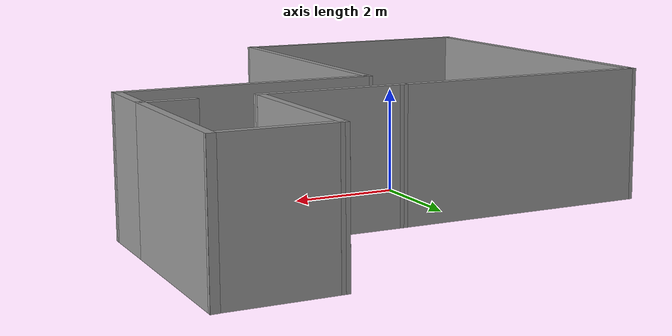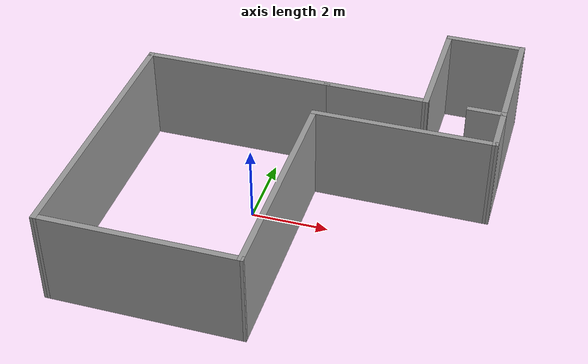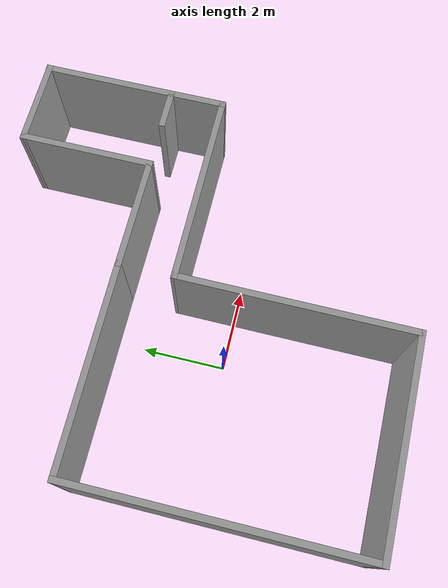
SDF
<?xml version='1.0'?>
<sdf version='1.7'>
  <model name='mapa_home_copa'>
    <pose>1.0426 0.830398 0 0 -0 0</pose>
    <link name='Wall_11'>
      <collision name='Wall_11_Collision'>
        <geometry>
          <box>
            <size>5.01742 0.15 2.5</size>
          </box>
        </geometry>
        <pose>0 0 1.25 0 -0 0</pose>
      </collision>
      <visual name='Wall_11_Visual'>
        <pose>0 0 1.25 0 -0 0</pose>
        <geometry>
          <box>
            <size>5.01742 0.15 2.5</size>
          </box>
        </geometry>
        <material>
          <script>
            <uri>file://media/materials/scripts/gazebo.material</uri>
            <name>Gazebo/Grey</name>
          </script>
          <ambient>1 1 1 1</ambient>
        </material>
        <meta>
          <layer>0</layer>
        </meta>
      </visual>
      <pose>-2.27864 -4.96646 0 0 -0 -3.13802</pose>
    </link>
    <link name='Wall_12'>
      <collision name='Wall_12_Collision'>
        <geometry>
          <box>
            <size>7 0.15 2.5</size>
          </box>
        </geometry>
        <pose>0 0 1.25 0 -0 0</pose>
      </collision>
      <visual name='Wall_12_Visual'>
        <pose>0 0 1.25 0 -0 0</pose>
        <geometry>
          <box>
            <size>7 0.15 2.5</size>
          </box>
        </geometry>
        <material>
          <script>
            <uri>file://media/materials/scripts/gazebo.material</uri>
            <name>Gazebo/Grey</name>
          </script>
          <ambient>1 1 1 1</ambient>
        </material>
        <meta>
          <layer>0</layer>
        </meta>
      </visual>
      <pose>-4.71234 -1.55015 0 0 -0 1.5708</pose>
    </link>
    <link name='Wall_13'>
      <collision name='Wall_13_Collision'>
        <geometry>
          <box>
            <size>5.0087 0.15 2.5</size>
          </box>
        </geometry>
        <pose>0 0 1.25 0 -0 0</pose>
      </collision>
      <visual name='Wall_13_Visual'>
        <pose>0 0 1.25 0 -0 0</pose>
        <geometry>
          <box>
            <size>5.0087 0.15 2.5</size>
          </box>
        </geometry>
        <material>
          <script>
            <uri>file://media/materials/scripts/gazebo.material</uri>
            <name>Gazebo/Grey</name>
          </script>
          <ambient>1 1 1 1</ambient>
        </material>
        <meta>
          <layer>0</layer>
        </meta>
      </visual>
      <pose>-2.28299 1.87919 0 0 -0 0.00179</pose>
    </link>
    <link name='Wall_15'>
      <collision name='Wall_15_Collision'>
        <geometry>
          <box>
            <size>4.7 0.15 2.5</size>
          </box>
        </geometry>
        <pose>0 0 1.25 0 -0 0</pose>
      </collision>
      <visual name='Wall_15_Visual'>
        <pose>0 0 1.25 0 -0 0</pose>
        <geometry>
          <box>
            <size>4.7 0.15 2.5</size>
          </box>
        </geometry>
        <material>
          <script>
            <uri>file://media/materials/scripts/gazebo.material</uri>
            <name>Gazebo/Grey</name>
          </script>
          <ambient>1 1 1 1</ambient>
        </material>
        <meta>
          <layer>0</layer>
        </meta>
      </visual>
      <pose>2.43741 0.595569 0 0 -0 0</pose>
    </link>
    <link name='Wall_16'>
      <collision name='Wall_16_Collision'>
        <geometry>
          <box>
            <size>1.42065 0.15 2.5</size>
          </box>
        </geometry>
        <pose>0 0 1.25 0 -0 0</pose>
      </collision>
      <visual name='Wall_16_Visual'>
        <pose>0 0 1.25 0 -0 0</pose>
        <geometry>
          <box>
            <size>1.42065 0.15 2.5</size>
          </box>
        </geometry>
        <material>
          <script>
            <uri>file://media/materials/scripts/gazebo.material</uri>
            <name>Gazebo/Grey</name>
          </script>
          <ambient>1 1 1 1</ambient>
        </material>
        <meta>
          <layer>0</layer>
        </meta>
      </visual>
      <pose>4.71071 1.23089 0 0 -0 1.57346</pose>
    </link>
    <link name='Wall_18'>
      <collision name='Wall_18_Collision'>
        <geometry>
          <box>
            <size>5.70334 0.15 2.5</size>
          </box>
        </geometry>
        <pose>0 0 1.25 0 -0 0</pose>
      </collision>
      <visual name='Wall_18_Visual'>
        <pose>0 0 1.25 0 -0 0</pose>
        <geometry>
          <box>
            <size>5.70334 0.15 2.5</size>
          </box>
        </geometry>
        <material>
          <script>
            <uri>file://media/materials/scripts/gazebo.material</uri>
            <name>Gazebo/Grey</name>
          </script>
          <ambient>1 1 1 1</ambient>
        </material>
        <meta>
          <layer>0</layer>
        </meta>
      </visual>
      <pose>0.158729 -2.1811 0 0 -0 1.56947</pose>
    </link>
    <link name='Wall_21'>
      <collision name='Wall_21_Collision'>
        <geometry>
          <box>
            <size>1 0.15 2.5</size>
          </box>
        </geometry>
        <pose>0 0 1.25 0 -0 0</pose>
      </collision>
      <visual name='Wall_21_Visual'>
        <pose>0 0 1.25 0 -0 0</pose>
        <geometry>
          <box>
            <size>1 0.15 2.5</size>
          </box>
        </geometry>
        <material>
          <script>
            <uri>file://media/materials/scripts/gazebo.material</uri>
            <name>Gazebo/Grey</name>
          </script>
          <ambient>1 1 1 1</ambient>
        </material>
        <meta>
          <layer>0</layer>
        </meta>
      </visual>
      <pose>4.28402 1.86621 0 0 -0 3.14159</pose>
    </link>
    <link name='Wall_3'>
      <collision name='Wall_3_Collision'>
        <geometry>
          <box>
            <size>3.25 0.15 2.5</size>
          </box>
        </geometry>
        <pose>0 0 1.25 0 -0 0</pose>
      </collision>
      <visual name='Wall_3_Visual'>
        <pose>0 0 1.25 0 -0 0</pose>
        <geometry>
          <box>
            <size>3.25 0.15 2.5</size>
          </box>
        </geometry>
        <material>
          <script>
            <uri>file://media/materials/scripts/gazebo.material</uri>
            <name>Gazebo/Grey</name>
          </script>
          <ambient>1 1 1 1</ambient>
        </material>
        <meta>
          <layer>0</layer>
        </meta>
      </visual>
      <pose>2.73766 3.42484 0 0 -0 -1.5708</pose>
    </link>
    <link name='Wall_5'>
      <collision name='Wall_5_Collision'>
        <geometry>
          <box>
            <size>3.25 0.15 2.5</size>
          </box>
        </geometry>
        <pose>0 0 1.25 0 -0 0</pose>
      </collision>
      <visual name='Wall_5_Visual'>
        <pose>0 0 1.25 0 -0 0</pose>
        <geometry>
          <box>
            <size>3.25 0.15 2.5</size>
          </box>
        </geometry>
        <material>
          <script>
            <uri>file://media/materials/scripts/gazebo.material</uri>
            <name>Gazebo/Grey</name>
          </script>
          <ambient>1 1 1 1</ambient>
        </material>
        <meta>
          <layer>0</layer>
        </meta>
      </visual>
      <pose>4.70902 3.41621 0 0 -0 1.5708</pose>
    </link>
    <link name='Wall_6'>
      <collision name='Wall_6_Collision'>
        <geometry>
          <box>
            <size>2.12141 0.15 2.5</size>
          </box>
        </geometry>
        <pose>0 0 1.25 0 -0 0</pose>
      </collision>
      <visual name='Wall_6_Visual'>
        <pose>0 0 1.25 0 -0 0</pose>
        <geometry>
          <box>
            <size>2.12141 0.15 2.5</size>
          </box>
        </geometry>
        <material>
          <script>
            <uri>file://media/materials/scripts/gazebo.material</uri>
            <name>Gazebo/Grey</name>
          </script>
          <ambient>1 1 1 1</ambient>
        </material>
        <meta>
          <layer>0</layer>
        </meta>
      </visual>
      <pose>3.72334 4.96724 0 0 -0 3.13388</pose>
    </link>
    <link name='Wall_9'>
      <collision name='Wall_9_Collision'>
        <geometry>
          <box>
            <size>2.74132 0.15 2.5</size>
          </box>
        </geometry>
        <pose>0 0 1.25 0 -0 0</pose>
      </collision>
      <visual name='Wall_9_Visual'>
        <pose>0 0 1.25 0 -0 0</pose>
        <geometry>
          <box>
            <size>2.74132 0.15 2.5</size>
          </box>
        </geometry>
        <material>
          <script>
            <uri>file://media/materials/scripts/gazebo.material</uri>
            <name>Gazebo/Grey</name>
          </script>
          <ambient>1 1 1 1</ambient>
        </material>
        <meta>
          <layer>0</layer>
        </meta>
      </visual>
      <pose>1.44201 1.87919 0 0 -0 3.13824</pose>
    </link>
    <static>1</static>
  </model>
</sdf>
